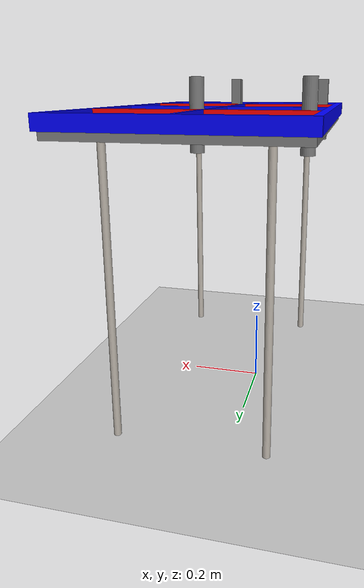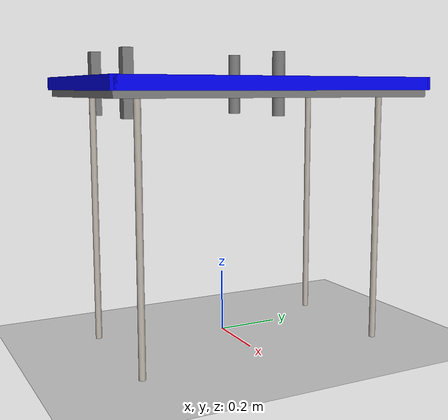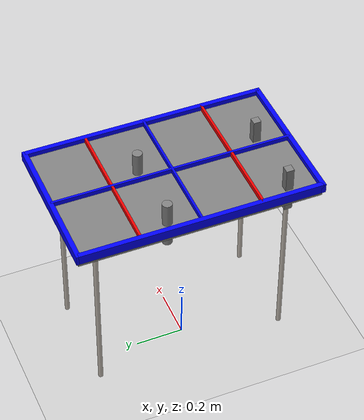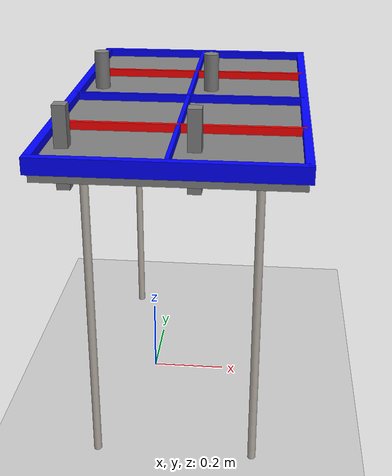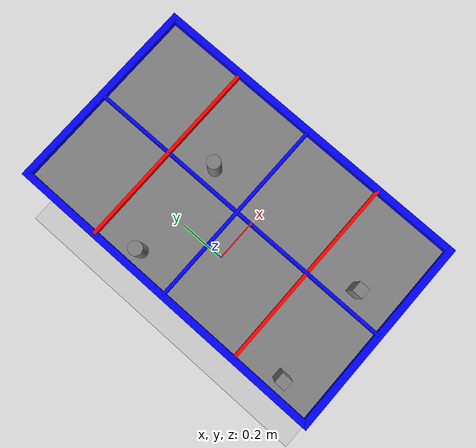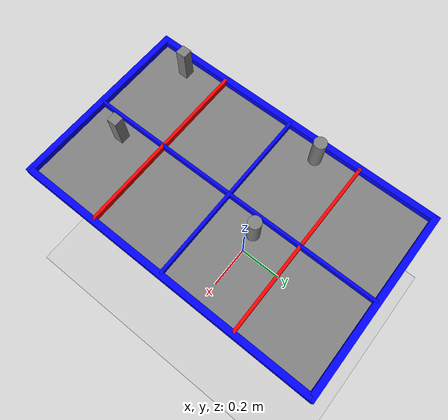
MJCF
<mujoco model="playground_arena_bbbb">
  <asset>
    <texture builtin="gradient" height="256" rgb1=".9 .9 1." rgb2=".2 .3 .4" type="skybox" width="256"/>
    <texture file="../textures/light-gray-floor-tile.png" type="2d" name="texplane"/>
    <material name="floorplane" reflectance="0.01" shininess="0.0" specular="0.0" texrepeat="2 2" texture="texplane" texuniform="true"/>
    <!-- steel legs -->
    <texture file="../textures/steel-brushed.png" type="cube" name="tex-steel-brushed"/>
    <material name="table_legs_metal" reflectance="0.8" shininess="0.8" texrepeat="1 1" texture="tex-steel-brushed" />
    <!-- plaster walls -->
    <texture file="../textures/light-gray-plaster.png" type="2d" name="tex-light-gray-plaster"/>
    <material name="walls_mat" reflectance="0.0" shininess="0.1" specular="0.1" texrepeat="3 3" texture="tex-light-gray-plaster" texuniform="true" />
    <!-- bins -->
    <texture file="../textures/light-wood.png" type="2d" name="tex-light-wood"/>
    <texture file="../textures/dark-wood.png" type="2d" name="tex-dark-wood"/>
    <material name="light-wood" reflectance="0" texrepeat="15 15" texture="tex-light-wood" texuniform="true"/>
    <material name="dark-wood" reflectance="0" texrepeat="5 5" texture="tex-dark-wood" texuniform="true"/>

    <texture file="../textures/steel-scratched.png" type="cube" name="steel-metal"/>
    <texture file="../textures/brass-ambra.png" type="cube" name="brass-metal"/>
    <material name="smetal" reflectance="1.0" shininess="1.0" specular="1.0" texrepeat="1 1" texture="steel-metal" texuniform="true"/>
    <material name="bmetal"  reflectance="1.0" shininess="1.0" specular="1.0" texrepeat="1 1" texture="brass-metal" texuniform="true"/>
  </asset>
  <worldbody>
    <geom condim="3" group="1" material="floorplane" name="floor" pos="0 0 0" size="3 3 .125" type="plane"/>
    <!-- Walls (visual only) -->
    <!-- bins -->
    <body name="bin1" pos="0.1 0 0.8">
      <geom pos="0 0 0" size="0.3 0.5 0.02" type="box" group="0" friction="1 0.005 0.0001"/>
      <geom pos="0 0 0" material="light-wood" size="0.3 0.5 0.02" type="box" conaffinity="0" contype="0" group="1"/>

        <geom pos="0 0.5 0.02" size="0.31 0.01 0.02" type="box" group="0" friction="1 0.005 0.0001" rgba="0 0 1 1"/>
        <geom pos="0 0.5 0.02" size="0.31 0.01 0.02" type="box" conaffinity="0" contype="0" group="1" material="light-wood"/>
        <geom pos="0 -0.5 0.02" size="0.31 0.01 0.02" type="box" group="0" friction="1 0.005 0.0001" rgba="0 0 1 1"/>
        <geom pos="0 -0.5 0.02" size="0.31 0.01 0.02" type="box" conaffinity="0" contype="0" group="1" material="light-wood"/>
        <geom pos="0.3 0 0.02" size="0.01 0.5 0.02" type="box" group="0" friction="1 0.005 0.0001" rgba="0 0 1 1"/>
        <geom pos="0.3 0 0.02" size="0.01 0.5 0.02" type="box" conaffinity="0" contype="0" group="1" material="light-wood"/>
        <geom pos="-0.3 0 0.02" size="0.01 0.5 0.02" type="box" group="0" friction="1 0.005 0.0001" rgba="0 0 1 1"/>
        <geom pos="-0.3 0 0.02" size="0.01 0.5 0.02" type="box" conaffinity="0" contype="0" group="1" material="light-wood"/>

        <geom pos="0 0 0.02" size="0.3 0.005 0.02" type="box" group="0" friction="1 0.005 0.0001" rgba="0 0 1 1"/>
        <geom pos="0 0 0.02" size="0.3 0.005 0.02" type="box" conaffinity="0" contype="0" group="1" material="light-wood"/>
        <geom pos="0 0 0.02" size="0.005 0.5 0.02" type="box" group="0" friction="1 0.005 0.0001" rgba="0 0 1 1"/>
        <geom pos="0 0 0.02" size="0.005 0.5 0.02" type="box" conaffinity="0" contype="0" group="1" material="light-wood"/>

        <geom pos="-0.15 -0.25 0.02" size="0.15 0.005 0.02" type="box" group="0" friction="1 0.005 0.0001" rgba="1 0 0 1"/>
        <geom pos="-0.15 -0.25 0.02" size="0.15 0.005 0.02" type="box" conaffinity="0" contype="0" group="1" material="dark-wood"/>

        <geom pos="-0.15 0.25 0.02" size="0.15 0.005 0.02" type="box" group="0" friction="1 0.005 0.0001" rgba="1 0 0 1"/>
        <geom pos="-0.15 0.25 0.02" size="0.15 0.005 0.02" type="box" conaffinity="0" contype="0" group="1" material="dark-wood"/>

        <geom pos="0.15 -0.25 0.02" size="0.15 0.005 0.02" type="box" group="0" friction="1 0.005 0.0001" rgba="1 0 0 1"/>
        <geom pos="0.15 -0.25 0.02" size="0.15 0.005 0.02" type="box" conaffinity="0" contype="0" group="1" material="dark-wood"/>

        <geom pos="0.15 0.25 0.02" size="0.15 0.005 0.02" type="box" group="0" friction="1 0.005 0.0001" rgba="1 0 0 1"/>
        <geom pos="0.15 0.25 0.02" size="0.15 0.005 0.02" type="box" conaffinity="0" contype="0" group="1" material="dark-wood"/>

        <geom pos="0.2 0.4 -0.4" size="0.01 0.4" type="cylinder" conaffinity="0" contype="0" group="1" name="bin1_leg1_visual" material="table_legs_metal"/>
        <geom pos="-0.2 0.4 -0.4" size="0.01 0.4" type="cylinder" conaffinity="0" contype="0" group="1" name="bin1_leg2_visual" material="table_legs_metal"/>
        <geom pos="-0.2 -0.4 -0.4" size="0.01 0.4" type="cylinder" conaffinity="0" contype="0" group="1" name="bin1_leg3_visual" material="table_legs_metal"/>
        <geom pos="0.2 -0.4 -0.4" size="0.01 0.4" type="cylinder" conaffinity="0" contype="0" group="1" name="bin1_leg4_visual" material="table_legs_metal"/>

        <body name="peg0" pos="-0.25 -0.375 0.02">
          <geom pos="0 0 0" size="0.016 0.016 0.1" type="box" group="0" friction="1 0.005 0.0001"/>
          <geom pos="0 0 0" size="0.016 0.016 0.1" type="box" conaffinity="0" contype="0" group="1" material="bmetal" />
        </body>
        <body name="peg1" pos="-0.25 0.125 0.02">
          <geom pos="0 0 0" size="0.02 0.1" type="cylinder" group="0" friction="1 0.005 0.0001"/>
          <geom pos="0 0 0" size="0.02 0.1" type="cylinder" conaffinity="0" contype="0" group="1" material="smetal" />
        </body>
        <body name="peg2" pos="0.05 -0.375 0.02">
          <geom pos="0 0 0" size="0.016 0.016 0.1" type="box" group="0" friction="1 0.005 0.0001"/>
          <geom pos="0 0 0" size="0.016 0.016 0.1" type="box" conaffinity="0" contype="0" group="1" material="bmetal" />
        </body>
        <body name="peg3" pos="0.05 0.125 0.02">
          <geom pos="0 0 0" size="0.02 0.1" type="cylinder" group="0" friction="1 0.005 0.0001"/>
          <geom pos="0 0 0" size="0.02 0.1" type="cylinder" conaffinity="0" contype="0" group="1" material="smetal" />
        </body>
    </body>
    <body name="bin2" pos="0.1 0.28 0.8">
    </body>
    <light pos="1.0 1.0 1.5" dir="-0.2 -0.2 -1" specular="0.3 0.3 0.3" directional="true" castshadow="false"/>
    <!-- front view -->
    <camera mode="fixed" name="frontview" pos="1.6 0 1.45" quat="0.56 0.43 0.43 0.56"/>
    <!-- bird view -->
    <camera mode="fixed" name="birdview" pos="-0.2 0 3.0" quat="0.7071 0 0 0.7071"/>
    <!-- agent view -->
    <camera mode="fixed" name="agentview" pos="1.0 0 1.75" quat="0.653 0.271 0.271 0.653"/>
  </worldbody>
</mujoco>
